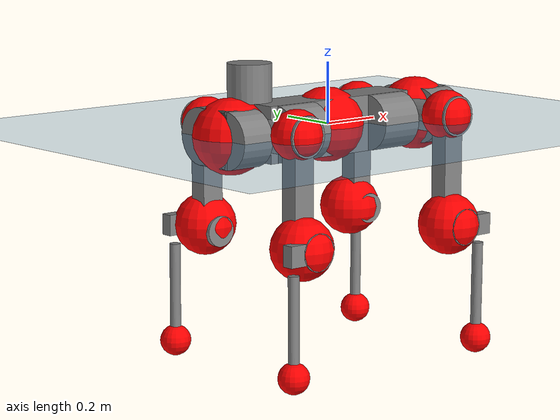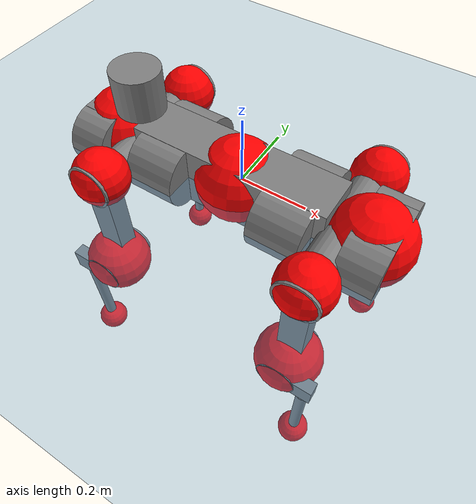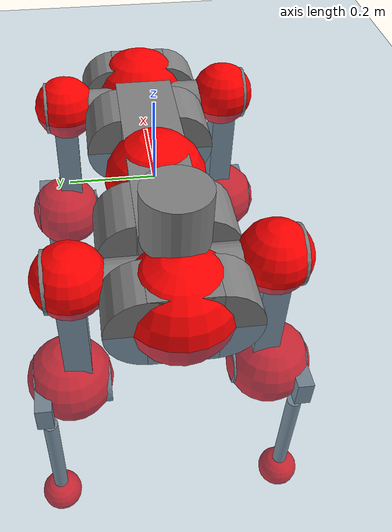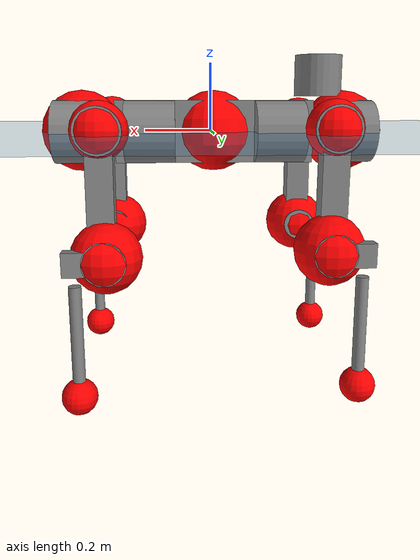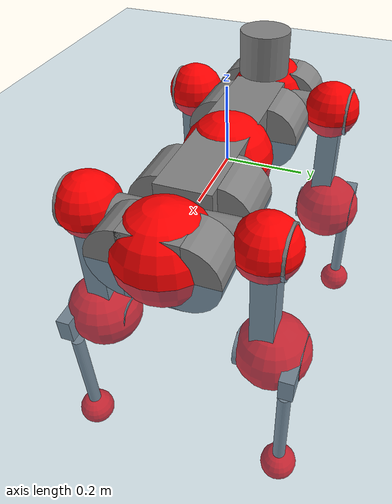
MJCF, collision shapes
<mujoco model="anymal_c">
  <compiler angle="radian" assetdir="assets" balanceinertia="true" inertiafromgeom="false"/>

  <option timestep="0.005" density="1.2" viscosity="2e-05"/>

  <size nkey="1"/>

  <visual>
    <quality shadowsize="8192"/>
    <map shadowclip="0.5"/>
  </visual>

  <default>
    <default class="/">
      <material specular="0" shininess="0.25"/>
      <geom contype="0" conaffinity="0" group="1" solref="-1000 -80"/>
      <site size="0.01 0.005 0.005" group="5"/>
      <general forcelimited="true" forcerange="-80 80" biastype="affine" gainprm="80" biasprm="0 -80 -2"/>
      <default class="anymal_c">
        <joint armature="0.01" damping="0.01" frictionloss="0.1"/>
        <default class="visual">
          <geom type="mesh" group="2"/>
          <default class="visual_zflip"/>
        </default>
        <default class="collision">
          <geom type="cylinder" group="3"/>
          <default class="foot">
            <geom size="0.03 0 0" type="sphere" condim="6" priority="1" friction="0.8 0.02 0.01" solimp="0.015 1 0.03"/>
          </default>
        </default>
      </default>
      <default class="reward_collision_sphere">
        <geom group="5" rgba="1 0 0 1"/>
      </default>
    </default>
  </default>

  <asset>
    <texture type="skybox" colorspace="auto" name="//unnamed_texture_0" builtin="gradient" rgb1="0.95 0.95 0.95" rgb2="0.95 0.95 0.95" width="100" height="600"/>
    <texture type="2d" colorspace="auto" name="texplane" builtin="checker" rgb1="0.345 0.575 0.748" rgb2="0.345 0.575 0.748" markrgb="1 1 1" width="512" height="512"/>
    <texture type="2d" colorspace="linear" name="base" file="base.png"/>
    <texture type="2d" colorspace="linear" name="top_shell" file="top_shell.png"/>
    <texture type="2d" colorspace="linear" name="bottom_shell" file="bottom_shell.png"/>
    <texture type="2d" colorspace="linear" name="remote" file="remote.png"/>
    <texture type="2d" colorspace="linear" name="hatch" file="hatch.png"/>
    <texture type="2d" colorspace="linear" name="handle" file="handle.png"/>
    <texture type="2d" colorspace="linear" name="face" file="face.png"/>
    <texture type="2d" colorspace="linear" name="battery" file="battery.png"/>
    <texture type="2d" colorspace="linear" name="lidar_cage" file="lidar_cage.png"/>
    <texture type="2d" colorspace="linear" name="depth_camera" file="depth_camera.png"/>
    <texture type="2d" colorspace="linear" name="wide_angle_camera" file="wide_angle_camera.png"/>
    <texture type="2d" colorspace="linear" name="lidar" file="lidar.png"/>
    <texture type="2d" colorspace="linear" name="drive" file="drive.png"/>
    <texture type="2d" colorspace="linear" name="hip_l" file="hip_l.png"/>
    <texture type="2d" colorspace="linear" name="shank_l" file="shank_l.png"/>
    <texture type="2d" colorspace="linear" name="foot" file="foot.png"/>
    <texture type="2d" colorspace="linear" name="thigh" file="thigh.png"/>
    <texture type="2d" colorspace="linear" name="shank_r" file="shank_r.png"/>
    <texture type="2d" colorspace="linear" name="hip_r" file="hip_r.png"/>
    <material name="MatPlane" class="/" texture="texplane" texuniform="true" texrepeat="2 2" specular="0.9" shininess="0.5"/>
    <material name="black_plastic" class="/" rgba="0.007 0.007 0.007 1"/>
    <material name="green" class="/" rgba="0.052 0.178 0.033 1"/>
    <material name="red" class="/" rgba="0.178 0.006 0.005 1"/>
    <material name="yellow" class="/" rgba="0.178 0.119 0.006 1"/>
    <material name="lwl" class="/" rgba="0.8 0.8 0.8 1"/>
    <material name="base" class="/" texture="base"/>
    <material name="top_shell" class="/" texture="top_shell"/>
    <material name="bottom_shell" class="/" texture="bottom_shell"/>
    <material name="hip_l" class="/" texture="hip_l"/>
    <material name="thigh" class="/" texture="thigh"/>
    <material name="shank_l" class="/" texture="shank_l"/>
    <material name="foot" class="/" texture="foot"/>
    <material name="hip_r" class="/" texture="hip_r"/>
    <material name="shank" class="/" texture="shank_r"/>
    <material name="hatch" class="/" texture="hatch"/>
    <material name="remote" class="/" texture="remote"/>
    <material name="handle" class="/" texture="handle"/>
    <material name="face" class="/" texture="face"/>
    <material name="depth_camera" class="/" texture="depth_camera"/>
    <material name="wide_angle_camera" class="/" texture="wide_angle_camera"/>
    <material name="battery" class="/" texture="battery"/>
    <material name="lidar_cage" class="/" texture="lidar_cage"/>
    <material name="lidar" class="/" texture="lidar"/>
    <material name="drive" class="/" texture="drive"/>
    <mesh name="base_0" class="/" file="base_0.obj"/>
    <mesh name="base_1" class="/" file="base_1.obj"/>
    <mesh name="base_2" class="/" file="base_2.obj"/>
    <mesh name="base_3" class="/" file="base_3.obj"/>
    <mesh name="base_4" class="/" file="base_4.obj"/>
    <mesh name="base_5" class="/" file="base_5.obj"/>
    <mesh name="top_shell" class="/" file="top_shell.obj"/>
    <mesh name="bottom_shell" class="/" file="bottom_shell.obj"/>
    <mesh name="remote" class="/" file="remote.obj"/>
    <mesh name="handle" class="/" file="handle.obj"/>
    <mesh name="face" class="/" file="face.obj"/>
    <mesh name="wide_angle_camera" class="/" file="wide_angle_camera.obj"/>
    <mesh name="depth_camera" class="/" file="depth_camera.obj"/>
    <mesh name="battery" class="/" file="battery.obj"/>
    <mesh name="lidar_cage" class="/" file="lidar_cage.obj"/>
    <mesh name="lidar" class="/" file="lidar.obj"/>
    <mesh name="drive" class="/" file="drive.obj"/>
    <mesh name="hip_l" class="/" file="hip_l.obj"/>
    <mesh name="thigh" class="/" file="thigh.obj"/>
    <mesh name="shank_l" class="/" file="shank_l.obj"/>
    <mesh name="foot" class="/" file="foot.obj"/>
    <mesh name="hip_r" class="/" file="hip_r.obj"/>
    <mesh name="hatch" class="/" file="hatch.obj"/>
    <mesh name="shank_r" class="/" file="shank_r.obj"/>
  </asset>

  <worldbody>
    <geom name="floor" class="/" size="100 100 0.125" type="plane" group="0" material="MatPlane"/>
    <light name="toplight_shadow" class="/" pos="0 0 5" dir="0.0990148 0.0990148 -0.990148" type="directional" ambient="0.04 0.04 0.04" diffuse="0.55 0.55 0.55" specular="0.12 0.12 0.12"/>
    <light name="toplight_fill" class="/" pos="0 0 5" dir="0.0990148 0.0990148 -0.990148" type="directional" castshadow="false" ambient="0.04 0.04 0.04" diffuse="0.3 0.3 0.3" specular="0.08 0.08 0.08"/>
    <body name="trunk" childclass="anymal_c" pos="-0.00966211 -0.00304524 -0.00119879" quat="1 -0.000314516 -0.000386432 0.000215429">
      <inertial pos="0.00144467 -0.00155667 0.0587691" quat="0.480987 0.498342 0.507388 0.512702" mass="20.4598" diaginertia="0.268193 0.372121 0.603363"/>
      <joint name="//unnamed_joint_0" type="free" armature="0" damping="0" frictionloss="0"/>
      <geom name="//unnamed_geom_1" class="visual" material="green" mesh="base_0"/>
      <geom name="//unnamed_geom_2" class="visual" material="yellow" mesh="base_1"/>
      <geom name="//unnamed_geom_3" class="visual" material="red" mesh="base_2"/>
      <geom name="//unnamed_geom_4" class="visual" material="black_plastic" mesh="base_3"/>
      <geom name="//unnamed_geom_5" class="visual" material="lwl" mesh="base_4"/>
      <geom name="//unnamed_geom_6" class="visual" material="base" mesh="base_5"/>
      <geom name="trunk_1" class="collision" size="0.295031 0.0712143 0.0915613" type="box"/>
      <geom name="trunk_2" class="collision" size="0.0915613 0.0737577" pos="0.19194 0.0655885 0" quat="0.707107 0 0.707107 0"/>
      <geom name="trunk_3" class="collision" size="0.0915613 0.0737577" pos="-0.19194 0.0655885 0" quat="0.707107 0 0.707107 0"/>
      <geom name="trunk_4" class="collision" size="0.0915613 0.0737577" pos="0.19194 -0.0655885 0" quat="0.707107 0 0.707107 0"/>
      <geom name="trunk_5" class="collision" size="0.0915613 0.0737577" pos="-0.19194 -0.0655885 0" quat="0.707107 0 0.707107 0"/>
      <geom name="//unnamed_geom_12" class="visual" material="top_shell" mesh="top_shell"/>
      <geom name="//unnamed_geom_13" class="visual" material="bottom_shell" mesh="bottom_shell"/>
      <geom name="//unnamed_geom_14" class="visual" material="remote" mesh="remote"/>
      <geom name="//unnamed_geom_15" class="visual" material="handle" mesh="handle"/>
      <geom name="//unnamed_geom_16" class="visual" pos="0.36579 0 0" quat="1 0 0 0" material="face" mesh="face"/>
      <geom name="trunk_6" class="collision" size="0.0559541 0.0712143 0.0915613" pos="0.414326 0 0" type="box"/>
      <geom name="//unnamed_geom_18" class="collision" size="0.0915613 0.0559541" pos="0.414326 0.0655885 0" quat="0.707107 0 0.707107 0"/>
      <geom name="//unnamed_geom_19" class="collision" size="0.0915613 0.0559541" pos="0.414326 -0.0655885 0" quat="0.707107 0 0.707107 0"/>
      <geom name="//unnamed_geom_20" class="visual" pos="0.407413 0 -0.038652" quat="0.965926 0 0.258819 0" material="depth_camera" mesh="depth_camera"/>
      <geom name="//unnamed_geom_21" class="visual" pos="0.452714 0 0.0184517" material="wide_angle_camera" mesh="wide_angle_camera"/>
      <geom name="//unnamed_geom_22" class="visual_zflip" pos="-0.36579 0 0" quat="0 0 0 1" material="face" mesh="face"/>
      <geom name="trunk_7" class="collision" size="0.0559541 0.0712143 0.0915613" pos="-0.414326 0 0" quat="0 0 0 1" type="box"/>
      <geom name="//unnamed_geom_24" class="collision" size="0.0915613 0.0559541" pos="-0.414326 -0.0655885 0" quat="0 -0.707107 0 0.707107"/>
      <geom name="//unnamed_geom_25" class="collision" size="0.0915613 0.0559541" pos="-0.414326 0.0655885 0" quat="0 -0.707107 0 0.707107"/>
      <geom name="//unnamed_geom_26" class="visual" pos="-0.407413 0 -0.038652" quat="0 -0.258819 0 0.965926" material="depth_camera" mesh="depth_camera"/>
      <geom name="//unnamed_geom_27" class="visual_zflip" pos="-0.452714 0 0.0184517" quat="0 0 0 1" material="wide_angle_camera" mesh="wide_angle_camera"/>
      <geom name="//unnamed_geom_28" class="visual" material="battery" mesh="battery"/>
      <geom name="//unnamed_geom_29" class="visual" pos="0 0.072371 0.0331457" quat="0.683013 -0.183013 0.183013 0.683013" material="depth_camera" mesh="depth_camera"/>
      <geom name="//unnamed_geom_30" class="visual" pos="0 -0.072371 0.0331457" quat="0.683013 0.183013 0.183013 -0.683013" material="depth_camera" mesh="depth_camera"/>
      <geom name="//unnamed_geom_31" class="visual" pos="-0.321224 0 0.0905946" quat="1 0 0 0" material="lidar_cage" mesh="lidar_cage"/>
      <geom name="trunk_8" class="collision" size="0.0712143 0.0610408" pos="-0.321224 0 0.164549"/>
      <geom name="//unnamed_geom_33" class="visual" pos="-0.321224 2.14093e-05 0.175273" quat="0.707107 0 0 -0.707107" material="lidar" mesh="lidar"/>
      <geom name="//unnamed_geom_34" class="visual" pos="0.264657 0.0975508 -5.09914e-09" quat="0.258819 0.965926 0 0" material="drive" mesh="drive"/>
      <geom name="//unnamed_geom_35" class="visual" pos="0.264657 -0.0975508 5.09914e-09" quat="0.258819 -0.965926 0 0" material="drive" mesh="drive"/>
      <geom name="//unnamed_geom_36" class="visual" pos="-0.264657 0.0975508 5.09914e-09" quat="0 0 0.965926 -0.258819" material="drive" mesh="drive"/>
      <geom name="//unnamed_geom_37" class="visual" pos="-0.264657 -0.0975508 -5.09914e-09" quat="0 0 -0.965926 -0.258819" material="drive" mesh="drive"/>
      <geom name="//unnamed_geom_38" class="visual" pos="0.102368 0 0.0899783" quat="1 0 0 0" material="hatch" mesh="hatch"/>
      <geom name="//unnamed_geom_39" class="reward_collision_sphere" size="0.122082"/>
      <geom name="//unnamed_geom_40" class="reward_collision_sphere" size="0.122082" pos="0.397118 0 0"/>
      <geom name="//unnamed_geom_41" class="reward_collision_sphere" size="0.122082" pos="-0.397118 0 0"/>
      <site name="imu" pos="0.211973 0.00607238 0.112858" size="0.0101735"/>
      <camera name="track" pos="0 -1.87396 0" quat="0.707107 0.707107 0 0" mode="trackcom"/>
      <camera name="ego_camera" pos="0.397118 0 -0.0493032" quat="-0.5 -0.5 0.5 0.5"/>
      <body name="LF_HIP" pos="0.266425 0.100655 0.00525212" quat="0.254757 0.967004 0.00096717 0.000828142">
        <inertial pos="0.0605958 -0.0110599 -0.011521" quat="-0.131343 0.706752 -0.132355 0.682446" mass="2.89693" diaginertia="0.0030971 0.00379166 0.00911409"/>
        <joint name="LF_HAA" pos="0 0 0" axis="0.998042 -0.062455 0.00328011" stiffness="0.0486104" range="-0.743489 0.4958" armature="0.0155352" damping="0.00666276" frictionloss="0.0800412"/>
        <geom name="//unnamed_geom_42" class="visual" pos="0 -0.000299959 4.92681e-05" quat="0.258819 -0.965926 0 0" material="hip_l" mesh="hip_l"/>
        <geom name="//unnamed_geom_43" class="visual" pos="0.0528608 -0.0648746 -0.0396418" quat="0.183013 -0.683013 0.683013 0.183013" material="drive" mesh="drive"/>
        <geom name="//unnamed_geom_44" class="collision" size="0.0508674 0.0712143" pos="0.0528608 -0.0112061 -0.00851096" quat="-0.353553 -0.612372 0.612372 -0.353553"/>
        <body name="LF_THIGH" pos="0.0589739 -0.0698988 -0.0465671" quat="0.184026 -0.682516 0.682865 0.184398">
          <inertial pos="0.0261582 -6.93666e-05 -0.291158" quat="0.99123 -0.000224809 -0.0999813 0.0864161" mass="3.39049" diaginertia="0.0170139 0.0223267 0.0120185"/>
          <joint name="LF_HFE" pos="0 0 0" axis="0.999719 -0.0234464 -0.00338794" stiffness="0.0289181" range="-3.21007 3.14632" armature="0.0053953" damping="0.0315944" frictionloss="0.128682"/>
          <geom name="//unnamed_geom_45" class="visual" pos="-0.00108422 -1.70848e-06 0" quat="0.707107 0 0 -0.707107" material="thigh" mesh="thigh"/>
          <geom name="//unnamed_geom_46" class="collision" size="0.0661276 0.0406939" pos="0.0352994 0 0" quat="0.5 0.5 -0.5 -0.5"/>
          <geom name="//unnamed_geom_47" class="collision" size="0.0381505 0.0305204 0.143765" pos="0.0264745 0 -0.174181" quat="0.707107 0 0 -0.707107" type="box"/>
          <geom name="//unnamed_geom_48" class="visual" pos="0.0885132 0 -0.351285" quat="1 0 0 0" material="drive" mesh="drive"/>
          <geom name="//unnamed_geom_49" class="collision" size="0.0508674 0.0712143" pos="0.0267393 0 -0.351285" quat="0.707107 0 0.707107 0"/>
          <geom name="//unnamed_geom_50" class="reward_collision_sphere" size="0.0813878" pos="0.0220621 0 0"/>
          <body name="LF_SHANK" pos="0.0906776 0.012028 -0.349871" quat="0.999994 0.00141083 0.000921241 0.00308491">
            <inertial pos="0.000690476 -0.0564347 -0.10014" quat="0.987341 -0.141843 -0.00293255 -0.0709177" mass="0.535013" diaginertia="0.00553709 0.0062942 0.00328522"/>
            <joint name="LF_KFE" pos="0 0 0" axis="0.999925 0.00602243 0.0106987" stiffness="0.000818161" range="-3.11253 3.1378" armature="0.0105043" damping="0.0402108" frictionloss="0.106313"/>
            <geom name="//unnamed_geom_51" class="visual" pos="-0.000353541 -0.0018851 0" quat="0.707107 0 0 -0.707107" material="shank_l" mesh="shank_l"/>
            <geom name="LF_kfe_act" class="collision" size="0.0610408 0.0203469" pos="0.0176497 0 0" quat="0.5 0.5 -0.5 -0.5"/>
            <geom name="//unnamed_geom_53" class="collision" size="0.0584965 0.0343355 0.0193296" pos="0.0176497 -0.0538753 0" quat="0.5 0.5 -0.5 -0.5" type="box"/>
            <geom name="//unnamed_geom_54" class="visual" pos="0.0115165 -0.0830148 -0.416575" quat="0.382683 0 0 -0.92388" material="foot" mesh="foot"/>
            <geom name="LF_calf" class="collision" size="0.0178036 0.143702" pos="0.0115164 -0.0824073 -0.208287" quat="0.707107 0 0 -0.707107"/>
            <geom name="LF_foot" class="foot" size="0.0226888" pos="0.0115164 -0.0824073 -0.388842" quat="0.707107 0 0 -0.707107"/>
            <geom name="//unnamed_geom_57" class="reward_collision_sphere" size="0.101735" pos="-0.0441242 0 0"/>
            <geom name="//unnamed_geom_58" class="reward_collision_sphere" size="0.0508674" pos="0.0115164 -0.0824073 -0.388842"/>
            <site name="LF_foot" class="foot" pos="0.0115164 -0.0824073 -0.388842" quat="0.707107 0 0 -0.707107" size="0.0101735"/>
          </body>
        </body>
      </body>
      <body name="RF_HIP" pos="0.276461 -0.108784 0.008407" quat="0.259509 -0.96574 -0.000557097 0.000476992">
        <inertial pos="0.0386796 0.0128993 -3.69261e-05" quat="0.125656 0.674175 0.154719 0.711169" mass="2.53762" diaginertia="0.00266345 0.00331242 0.00809711"/>
        <joint name="RF_HAA" pos="0 0 0" axis="0.99889 -0.0372367 0.02884" stiffness="0.000950985" range="-0.281954 0.730343" armature="0.0110002" damping="0.0138809" frictionloss="0.146084"/>
        <geom name="//unnamed_geom_59" class="visual" pos="0 0.000299957 4.9268e-05" quat="0.258819 0.965926 0 0" material="hip_r" mesh="hip_r"/>
        <geom name="//unnamed_geom_60" class="visual" pos="0.0528608 0.0648746 -0.0396418" quat="0.183013 0.683013 0.683013 -0.183013" material="drive" mesh="drive"/>
        <geom name="//unnamed_geom_61" class="collision" size="0.0508674 0.0712143" pos="0.0528608 0.0112061 -0.00851096" quat="-0.353553 0.612372 0.612372 0.353553"/>
        <body name="RF_THIGH" pos="0.0531028 0.0698434 -0.0570853" quat="0.183363 0.683206 0.683003 -0.181973">
          <inertial pos="0.0317665 -0.0125309 -0.304311" quat="0.992642 -0.00659635 -0.0808732 0.0898751" mass="3.13939" diaginertia="0.0159404 0.0209799 0.011638"/>
          <joint name="RF_HFE" pos="0 0 0" axis="0.999566 0.0240382 0.0170296" range="-3.15188 3.05141" armature="0.0110801" damping="0.0423483" frictionloss="0.0996888"/>
          <geom name="//unnamed_geom_62" class="visual" pos="-0.00108422 -1.70848e-06 0" quat="0.707107 0 0 -0.707107" material="thigh" mesh="thigh"/>
          <geom name="//unnamed_geom_63" class="collision" size="0.0661276 0.0406939" pos="0.0352994 0 0" quat="0.5 0.5 0.5 0.5"/>
          <geom name="//unnamed_geom_64" class="collision" size="0.0381505 0.0305204 0.143765" pos="0.0264745 0 -0.174181" quat="0.707107 0 0 0.707107" type="box"/>
          <geom name="//unnamed_geom_65" class="visual" pos="0.0885132 0 -0.351285" quat="1 0 0 0" material="drive" mesh="drive"/>
          <geom name="//unnamed_geom_66" class="collision" size="0.0508674 0.0712143" pos="0.0267393 0 -0.351285" quat="0.707107 0 0.707107 0"/>
          <geom name="//unnamed_geom_67" class="reward_collision_sphere" size="0.0813878" pos="0.0220621 0 0"/>
          <body name="RF_SHANK" pos="0.0844114 -0.00168494 -0.360194" quat="0.999983 -0.000278813 0.00543713 0.00187599">
            <inertial pos="-0.00787129 0.0636416 -0.108113" quat="0.992899 0.116401 -0.0014686 0.0244788" mass="0.686198" diaginertia="0.00512172 0.00590341 0.00271966"/>
            <joint name="RF_KFE" pos="0 0 0" axis="0.999958 0.00912341 0.000550301" range="-2.92608 3.11388" armature="0.0103531" damping="0" frictionloss="0.0537523"/>
            <geom name="//unnamed_geom_68" class="visual" pos="-0.000353539 0.00188509 0" quat="0.707107 0 0 0.707107" material="shank" mesh="shank_r"/>
            <geom name="RF_kfe_act" class="collision" size="0.0610408 0.0203469" pos="0.0176497 0 0" quat="0.5 0.5 0.5 0.5"/>
            <geom name="//unnamed_geom_70" class="collision" size="0.0584965 0.0343355 0.0193296" pos="0.0176497 0.0538753 0" quat="0.5 0.5 0.5 0.5" type="box"/>
            <geom name="//unnamed_geom_71" class="visual" pos="0.0115163 0.0830148 -0.416575" quat="0.382683 0 0 0.92388" material="foot" mesh="foot"/>
            <geom name="RF_calf" class="collision" size="0.0178036 0.143702" pos="0.0115164 0.0824073 -0.208287" quat="0.707107 0 0 0.707107"/>
            <geom name="RF_foot" class="foot" size="0.0316928" pos="0.0115164 0.0824073 -0.388842" quat="0.707107 0 0 0.707107"/>
            <geom name="//unnamed_geom_74" class="reward_collision_sphere" size="0.101735" pos="-0.0441242 0 0"/>
            <geom name="//unnamed_geom_75" class="reward_collision_sphere" size="0.0508674" pos="0.0115164 0.0824073 -0.388842"/>
            <site name="RF_foot" class="foot" pos="0.0115164 0.0824073 -0.388842" quat="0.707107 0 0 0.707107" size="0.0101735"/>
          </body>
        </body>
      </body>
      <body name="LH_HIP" pos="-0.277582 0.106825 0.00235335" quat="0.0003515 0.000536032 0.965738 -0.259519">
        <inertial pos="0.0392925 0.026687 -0.00914304" quat="0.121293 0.708884 0.105396 0.686777" mass="3.03473" diaginertia="0.00314199 0.0035156 0.0102552"/>
        <joint name="LH_HAA" pos="0 0 0" axis="0.999828 0.0121461 0.0139806" range="-0.625962 0.660939" armature="0.0103027" damping="0.00773913" frictionloss="0.11429"/>
        <geom name="//unnamed_geom_76" class="visual" pos="0 0.000299957 4.9268e-05" quat="-0.258819 -0.965926 0 0" material="hip_r" mesh="hip_r"/>
        <geom name="//unnamed_geom_77" class="visual" pos="0.0528608 0.0648746 -0.0396418" quat="0.183013 0.683013 0.683013 -0.183013" material="drive" mesh="drive"/>
        <geom name="//unnamed_geom_78" class="collision" size="0.0508674 0.0712143" pos="0.0528608 0.0112061 -0.00851096" quat="-0.353553 0.612372 0.612372 0.353553"/>
        <body name="LH_THIGH" pos="0.0477884 0.0646841 -0.0538496" quat="0.184253 0.682967 0.682875 -0.182451">
          <inertial pos="0.0265103 -0.0110986 -0.301298" quat="0.994045 0.0303703 -0.0740871 0.0739098" mass="2.9196" diaginertia="0.0159551 0.0199886 0.0124742"/>
          <joint name="LH_HFE" pos="0 0 0" axis="0.998727 -0.00263005 -0.0503634" stiffness="0.0355209" range="-3.2755 3.02002" armature="0.00506302" damping="0" frictionloss="0.0569242"/>
          <geom name="//unnamed_geom_79" class="visual" pos="-0.00108422 -1.70848e-06 0" quat="0.707107 0 0 -0.707107" material="thigh" mesh="thigh"/>
          <geom name="//unnamed_geom_80" class="collision" size="0.0661276 0.0406939" pos="0.0352994 0 0" quat="0.5 0.5 -0.5 -0.5"/>
          <geom name="//unnamed_geom_81" class="collision" size="0.0381505 0.0305204 0.143765" pos="0.0264745 0 -0.174181" quat="0.707107 0 0 -0.707107" type="box"/>
          <geom name="//unnamed_geom_82" class="visual" pos="0.0885132 0 -0.351285" quat="1 0 0 0" material="drive" mesh="drive"/>
          <geom name="//unnamed_geom_83" class="collision" size="0.0508674 0.0712143" pos="0.0267393 0 -0.351285" quat="0.707107 0 0.707107 0"/>
          <geom name="//unnamed_geom_84" class="reward_collision_sphere" size="0.0813878" pos="0.0220621 0 0"/>
          <body name="LH_SHANK" pos="0.0943899 -0.00860283 -0.339306" quat="0.999982 0.00274925 -0.00516074 0.00134731">
            <inertial pos="0.00568917 0.0574517 -0.112229" quat="0.993213 0.11222 -0.0243866 0.0184089" mass="0.709385" diaginertia="0.00542039 0.00711095 0.00330331"/>
            <joint name="LH_KFE" pos="0 0 0" axis="0.999881 0.00827334 -0.0130454" stiffness="0.019401" range="-3.16304 3.2614" armature="0.00961718" damping="0.0196781" frictionloss="0.14209"/>
            <geom name="//unnamed_geom_85" class="visual" pos="-0.000353539 0.00188509 0" quat="-0.707107 0 0 -0.707107" material="shank" mesh="shank_r"/>
            <geom name="LH_kfe_act" class="collision" size="0.0610408 0.0203469" pos="0.0176497 0 0" quat="0.5 0.5 -0.5 -0.5"/>
            <geom name="//unnamed_geom_87" class="collision" size="0.0584965 0.0343355 0.0193296" pos="0.0176497 0.0538753 0" quat="0.5 0.5 -0.5 -0.5" type="box"/>
            <geom name="//unnamed_geom_88" class="visual" pos="0.0115163 0.0830148 -0.416575" quat="-0.382683 0 0 -0.92388" material="foot" mesh="foot"/>
            <geom name="LH_calf" class="collision" size="0.0178036 0.143702" pos="0.0115164 0.0824073 -0.208287" quat="0.707107 0 0 -0.707107"/>
            <geom name="LH_foot" class="foot" size="0.0400468" pos="0.0115164 0.0824073 -0.388842" quat="0.707107 0 0 -0.707107"/>
            <geom name="//unnamed_geom_91" class="reward_collision_sphere" size="0.101735" pos="-0.0441242 0 0"/>
            <geom name="//unnamed_geom_92" class="reward_collision_sphere" size="0.0508674" pos="0.0115164 0.0824073 -0.388842"/>
            <site name="LH_foot" class="foot" pos="0.0115164 0.0824073 -0.388842" quat="0.707107 0 0 -0.707107" size="0.0101735"/>
          </body>
        </body>
      </body>
      <body name="RH_HIP" pos="-0.253803 -0.101028 -0.000972976" quat="0.00103056 0.000696547 -0.965836 -0.259153">
        <inertial pos="0.0427805 -0.019124 -0.00972515" quat="-0.116732 0.672248 -0.139698 0.717594" mass="2.92334" diaginertia="0.00293556 0.00328366 0.00869788"/>
        <joint name="RH_HAA" pos="0 0 0" axis="0.998376 0.00601382 0.0566539" range="-0.719679 0.446409" armature="0.0118185" damping="0" frictionloss="0.109951"/>
        <geom name="//unnamed_geom_93" class="visual" pos="0 -0.000299959 4.92681e-05" quat="-0.258819 0.965926 0 0" material="hip_l" mesh="hip_l"/>
        <geom name="//unnamed_geom_94" class="visual" pos="0.0528608 -0.0648746 -0.0396418" quat="-0.183013 0.683013 -0.683013 -0.183013" material="drive" mesh="drive"/>
        <geom name="//unnamed_geom_95" class="collision" size="0.0508674 0.0712143" pos="0.0528608 -0.0112061 -0.00851096" quat="0.353553 0.612372 -0.612372 0.353553"/>
        <body name="RH_THIGH" pos="0.0536911 -0.0668691 -0.0612593" quat="-0.18271 0.682069 -0.683878 -0.183602">
          <inertial pos="0.0259732 -0.00147974 -0.304719" quat="0.985549 -0.0419991 -0.109735 0.122015" mass="3.34065" diaginertia="0.0161847 0.0196286 0.0102663"/>
          <joint name="RH_HFE" pos="0 0 0" axis="0.999969 -0.00593441 -0.00524075" stiffness="0.035088" range="-3.10899 3.08906" armature="0.00615132" damping="0.0521212" frictionloss="0.124113"/>
          <geom name="//unnamed_geom_96" class="visual" pos="-0.00108422 -1.70848e-06 0" quat="0.707107 0 0 -0.707107" material="thigh" mesh="thigh"/>
          <geom name="//unnamed_geom_97" class="collision" size="0.0661276 0.0406939" pos="0.0352994 0 0" quat="0.5 0.5 0.5 0.5"/>
          <geom name="//unnamed_geom_98" class="collision" size="0.0381505 0.0305204 0.143765" pos="0.0264745 0 -0.174181" quat="0.707107 0 0 0.707107" type="box"/>
          <geom name="//unnamed_geom_99" class="visual" pos="0.0885132 0 -0.351285" quat="1 0 0 0" material="drive" mesh="drive"/>
          <geom name="//unnamed_geom_100" class="collision" size="0.0508674 0.0712143" pos="0.0267393 0 -0.351285" quat="0.707107 0 0.707107 0"/>
          <geom name="//unnamed_geom_101" class="reward_collision_sphere" size="0.0813878" pos="0.0220621 0 0"/>
          <body name="RH_SHANK" pos="0.0914944 -0.00229572 -0.352706" quat="1 -0.000171728 0.000247289 -0.000197918">
            <inertial pos="0.0143176 -0.0458247 -0.11014" quat="0.992343 -0.120617 -0.00567971 -0.0259659" mass="0.545116" diaginertia="0.00581454 0.00584454 0.00317657"/>
            <joint name="RH_KFE" pos="0 0 0" axis="0.999947 0.00894878 0.005092" range="-3.08602 2.92494" armature="0.0101825" damping="0" frictionloss="0.0458183"/>
            <geom name="//unnamed_geom_102" class="visual" pos="-0.000353541 -0.0018851 0" quat="0.707107 0 0 -0.707107" material="shank_l" mesh="shank_l"/>
            <geom name="RH_kfe_act" class="collision" size="0.0610408 0.0203469" pos="0.0176497 0 0" quat="0.5 0.5 0.5 0.5"/>
            <geom name="//unnamed_geom_104" class="collision" size="0.0584965 0.0343355 0.0193296" pos="0.0176497 -0.0538753 0" quat="0.5 0.5 0.5 0.5" type="box"/>
            <geom name="//unnamed_geom_105" class="visual" pos="0.0115165 -0.0830148 -0.416575" quat="0.382683 0 0 -0.92388" material="foot" mesh="foot"/>
            <geom name="RH_calf" class="collision" size="0.0178036 0.143702" pos="0.0115164 -0.0824073 -0.208287" quat="0.707107 0 0 0.707107"/>
            <geom name="RH_foot" class="foot" size="0.018556" pos="0.0115164 -0.0824073 -0.388842" quat="0.707107 0 0 0.707107"/>
            <geom name="//unnamed_geom_108" class="reward_collision_sphere" size="0.101735" pos="-0.0441242 0 0"/>
            <geom name="//unnamed_geom_109" class="reward_collision_sphere" size="0.0508674" pos="0.0115164 -0.0824073 -0.388842"/>
            <site name="RH_foot" class="foot" pos="0.0115164 -0.0824073 -0.388842" quat="0.707107 0 0 0.707107" size="0.0101735"/>
          </body>
        </body>
      </body>
    </body>
  </worldbody>

  <contact>
    <pair class="/" geom1="floor" geom2="LF_foot" name="//unnamed_contact_0"/>
    <pair class="/" geom1="floor" geom2="RF_foot" name="//unnamed_contact_1"/>
    <pair class="/" geom1="floor" geom2="LH_foot" name="//unnamed_contact_2"/>
    <pair class="/" geom1="floor" geom2="RH_foot" name="//unnamed_contact_3"/>
  </contact>

  <actuator>
    <general name="LF_HAA" class="/" joint="LF_HAA" forcerange="-82.6636 82.6636" gainprm="78.4433" biasprm="0 -78.4433 -1.93947"/>
    <general name="LF_HFE" class="/" joint="LF_HFE" forcerange="-108.171 108.171" gainprm="78.4433" biasprm="0 -78.4433 -1.93947"/>
    <general name="LF_KFE" class="/" joint="LF_KFE" forcerange="-70.75 70.75" gainprm="78.4433" biasprm="0 -78.4433 -1.93947"/>
    <general name="RF_HAA" class="/" joint="RF_HAA" forcerange="-86.929 86.929" gainprm="78.4433" biasprm="0 -78.4433 -1.93947"/>
    <general name="RF_HFE" class="/" joint="RF_HFE" forcerange="-83.7728 83.7728" gainprm="78.4433" biasprm="0 -78.4433 -1.93947"/>
    <general name="RF_KFE" class="/" joint="RF_KFE" forcerange="-64.4911 64.4911" gainprm="78.4433" biasprm="0 -78.4433 -1.93947"/>
    <general name="LH_HAA" class="/" joint="LH_HAA" forcerange="-84.1802 84.1802" gainprm="78.4433" biasprm="0 -78.4433 -1.93947"/>
    <general name="LH_HFE" class="/" joint="LH_HFE" forcerange="-63.4355 63.4355" gainprm="78.4433" biasprm="0 -78.4433 -1.93947"/>
    <general name="LH_KFE" class="/" joint="LH_KFE" forcerange="-97.1237 97.1237" gainprm="78.4433" biasprm="0 -78.4433 -1.93947"/>
    <general name="RH_HAA" class="/" joint="RH_HAA" forcerange="-78.1772 78.1772" gainprm="78.4433" biasprm="0 -78.4433 -1.93947"/>
    <general name="RH_HFE" class="/" joint="RH_HFE" forcerange="-75.5461 75.5461" gainprm="78.4433" biasprm="0 -78.4433 -1.93947"/>
    <general name="RH_KFE" class="/" joint="RH_KFE" forcerange="-118.063 118.063" gainprm="78.4433" biasprm="0 -78.4433 -1.93947"/>
  </actuator>

  <sensor>
    <gyro site="imu" name="imu_angular_velocity"/>
    <velocimeter site="imu" name="imu_linear_velocity"/>
    <framelinvel objtype="site" objname="LF_foot" name="LF_foot_global_linear_velocity"/>
    <framelinvel objtype="site" objname="RF_foot" name="RF_foot_global_linear_velocity"/>
    <framelinvel objtype="site" objname="LH_foot" name="LH_foot_global_linear_velocity"/>
    <framelinvel objtype="site" objname="RH_foot" name="RH_foot_global_linear_velocity"/>
  </sensor>

  <keyframe>
    <key name="home" qpos="0 0 0.55 1 0 0 0 0 0.4 -0.8 0 -0.4 0.8 0 -0.4 0.8 0 0.4 -0.8"/>
  </keyframe>
</mujoco>
